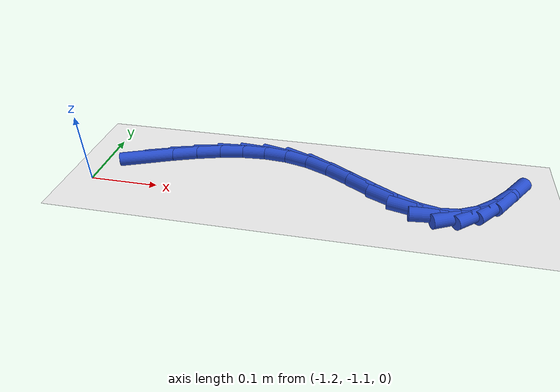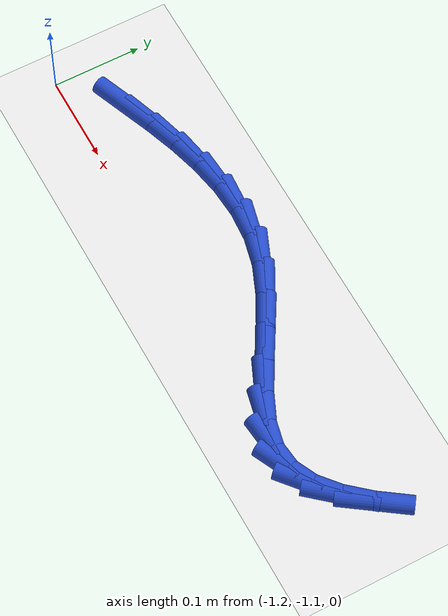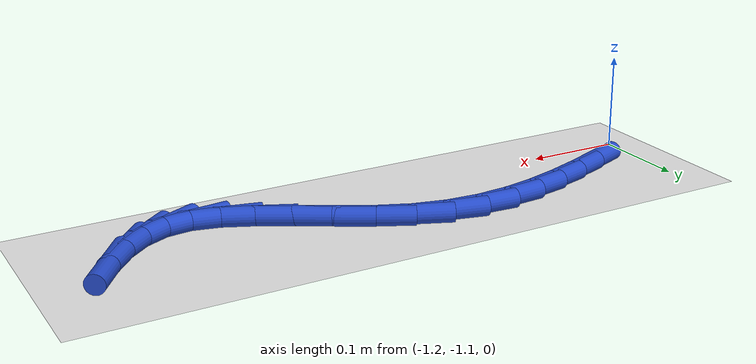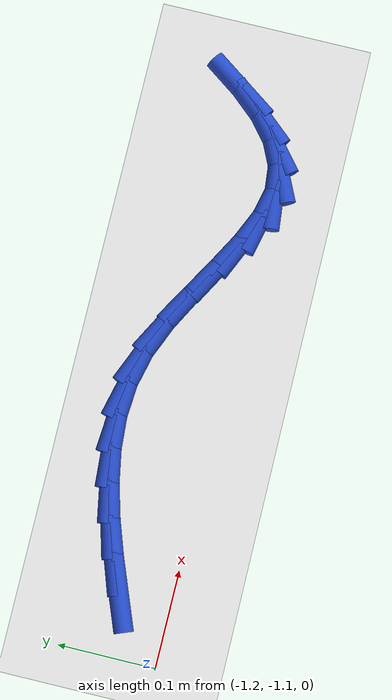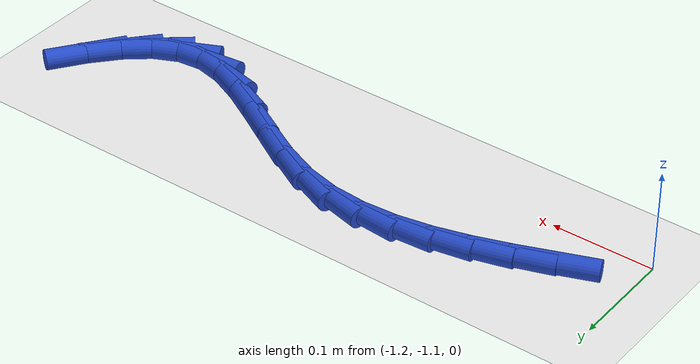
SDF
<sdf version="1.6">
 <world name="default">
  <model name="ground_plane">
   <static>1</static>
   <link name="link">
    <collision name="collision">
     <geometry><plane><normal>0 0 1</normal><size>100 100</size></plane></geometry>
     <surface><friction><ode><mu>100</mu><mu2>50</mu2></ode></friction></surface>
    </collision>
    <visual name="visual">
     <cast_shadows>0</cast_shadows>
     <geometry><plane><normal>0 0 1</normal><size>100 100</size></plane></geometry>
     <material>
      <script><uri>file://media/materials/scripts/gazebo.material</uri><name>Gazebo/WhiteGlow</name></script>
     </material>
    </visual>
   </link>
  </model>
  <model name="line">
   <link name="link_168">
    <pose>-1.1356898762267815 -1.04644188338284 0.01 0 1.57 0.3705356971624249</pose>
    <collision name="collision">
     <geometry><cylinder><radius>0.01</radius><length>0.08</length></cylinder></geometry>
    </collision>
    <visual name="visual">
     <material>
      <script><name>Gazebo/Blue</name><uri>file://media/materials/scripts/gazebo.material</uri></script>
     </material>
     <geometry><cylinder><radius>0.01</radius><length>0.08</length></cylinder></geometry>
    </visual>
   </link>
   <link name="link_169">
    <pose>-1.1012963533625058 -1.0330807022008377 0.01 0 1.57 0.3312994955244698</pose>
    <collision name="collision">
     <geometry><cylinder><radius>0.01</radius><length>0.08</length></cylinder></geometry>
    </collision>
    <visual name="visual">
     <material>
      <script><name>Gazebo/Blue</name><uri>file://media/materials/scripts/gazebo.material</uri></script>
     </material>
     <geometry><cylinder><radius>0.01</radius><length>0.08</length></cylinder></geometry>
    </visual>
   </link>
   <link name="link_170">
    <pose>-1.0668427425958449 -1.021229436284461 0.01 0 1.57 0.26890675327789965</pose>
    <collision name="collision">
     <geometry><cylinder><radius>0.01</radius><length>0.08</length></cylinder></geometry>
    </collision>
    <visual name="visual">
     <material>
      <script><name>Gazebo/Blue</name><uri>file://media/materials/scripts/gazebo.material</uri></script>
     </material>
     <geometry><cylinder><radius>0.01</radius><length>0.08</length></cylinder></geometry>
    </visual>
   </link>
   <link name="link_171">
    <pose>-1.0323672963665875 -1.011728640844794 0.01 0 1.57 0.18110304643794553</pose>
    <collision name="collision">
     <geometry><cylinder><radius>0.01</radius><length>0.08</length></cylinder></geometry>
    </collision>
    <visual name="visual">
     <material>
      <script><name>Gazebo/Blue</name><uri>file://media/materials/scripts/gazebo.material</uri></script>
     </material>
     <geometry><cylinder><radius>0.01</radius><length>0.08</length></cylinder></geometry>
    </visual>
   </link>
   <link name="link_172">
    <pose>-0.9979082671145232 -1.0054188710929226 0.01 0 1.57 0.06612149667915734</pose>
    <collision name="collision">
     <geometry><cylinder><radius>0.01</radius><length>0.08</length></cylinder></geometry>
    </collision>
    <visual name="visual">
     <material>
      <script><name>Gazebo/Blue</name><uri>file://media/materials/scripts/gazebo.material</uri></script>
     </material>
     <geometry><cylinder><radius>0.01</radius><length>0.08</length></cylinder></geometry>
    </visual>
   </link>
   <link name="link_173">
    <pose>-0.96350390727944 -1.0031406822399305 0.01 0 1.57 -0.07545653859609573</pose>
    <collision name="collision">
     <geometry><cylinder><radius>0.01</radius><length>0.08</length></cylinder></geometry>
    </collision>
    <visual name="visual">
     <material>
      <script><name>Gazebo/Blue</name><uri>file://media/materials/scripts/gazebo.material</uri></script>
     </material>
     <geometry><cylinder><radius>0.01</radius><length>0.08</length></cylinder></geometry>
    </visual>
   </link>
   <link name="link_174">
    <pose>-0.9291924693011286 -1.005734629496903 0.01 0 1.57 -0.23840270786793744</pose>
    <collision name="collision">
     <geometry><cylinder><radius>0.01</radius><length>0.08</length></cylinder></geometry>
    </collision>
    <visual name="visual">
     <material>
      <script><name>Gazebo/Blue</name><uri>file://media/materials/scripts/gazebo.material</uri></script>
     </material>
     <geometry><cylinder><radius>0.01</radius><length>0.08</length></cylinder></geometry>
    </visual>
   </link>
   <link name="link_175">
    <pose>-0.8950122056193777 -1.014041268074925 0.01 0 1.57 -0.39800355818640015</pose>
    <collision name="collision">
     <geometry><cylinder><radius>0.01</radius><length>0.08</length></cylinder></geometry>
    </collision>
    <visual name="visual">
     <material>
      <script><name>Gazebo/Blue</name><uri>file://media/materials/scripts/gazebo.material</uri></script>
     </material>
     <geometry><cylinder><radius>0.01</radius><length>0.08</length></cylinder></geometry>
    </visual>
   </link>
   <link name="link_176">
    <pose>-0.8610473166984963 -1.028321530042383 0.01 0 1.57 -0.4968047206521713</pose>
    <collision name="collision">
     <geometry><cylinder><radius>0.01</radius><length>0.08</length></cylinder></geometry>
    </collision>
    <visual name="visual">
     <material>
      <script><name>Gazebo/Blue</name><uri>file://media/materials/scripts/gazebo.material</uri></script>
     </material>
     <geometry><cylinder><radius>0.01</radius><length>0.08</length></cylinder></geometry>
    </visual>
   </link>
   <link name="link_177">
    <pose>-0.8275694360829564 -1.046471924794349 0.01 0 1.57 -0.5338979187542224</pose>
    <collision name="collision">
     <geometry><cylinder><radius>0.01</radius><length>0.08</length></cylinder></geometry>
    </collision>
    <visual name="visual">
     <material>
      <script><name>Gazebo/Blue</name><uri>file://media/materials/scripts/gazebo.material</uri></script>
     </material>
     <geometry><cylinder><radius>0.01</radius><length>0.08</length></cylinder></geometry>
    </visual>
   </link>
   <link name="link_178">
    <pose>-0.7948979837926774 -1.0657861469723384 0.01 0 1.57 -0.5130476309902703</pose>
    <collision name="collision">
     <geometry><cylinder><radius>0.01</radius><length>0.08</length></cylinder></geometry>
    </collision>
    <visual name="visual">
     <material>
      <script><name>Gazebo/Blue</name><uri>file://media/materials/scripts/gazebo.material</uri></script>
     </material>
     <geometry><cylinder><radius>0.01</radius><length>0.08</length></cylinder></geometry>
    </visual>
   </link>
   <link name="link_179">
    <pose>-0.7633523798606813 -1.0835578910526042 0.01 0 1.57 -0.42224068522523434</pose>
    <collision name="collision">
     <geometry><cylinder><radius>0.01</radius><length>0.08</length></cylinder></geometry>
    </collision>
    <visual name="visual">
     <material>
      <script><name>Gazebo/Blue</name><uri>file://media/materials/scripts/gazebo.material</uri></script>
     </material>
     <geometry><cylinder><radius>0.01</radius><length>0.08</length></cylinder></geometry>
    </visual>
   </link>
   <link name="link_180">
    <pose>-0.7332520443199877 -1.0970808515113994 0.01 0 1.57 -0.22776616963683866</pose>
    <collision name="collision">
     <geometry><cylinder><radius>0.01</radius><length>0.08</length></cylinder></geometry>
    </collision>
    <visual name="visual">
     <material>
      <script><name>Gazebo/Blue</name><uri>file://media/materials/scripts/gazebo.material</uri></script>
     </material>
     <geometry><cylinder><radius>0.01</radius><length>0.08</length></cylinder></geometry>
    </visual>
   </link>
   <link name="link_181">
    <pose>-0.7049163972036173 -1.1036487228249776 0.01 0 1.57 0.10074869645743757</pose>
    <collision name="collision">
     <geometry><cylinder><radius>0.01</radius><length>0.08</length></cylinder></geometry>
    </collision>
    <visual name="visual">
     <material>
      <script><name>Gazebo/Blue</name><uri>file://media/materials/scripts/gazebo.material</uri></script>
     </material>
     <geometry><cylinder><radius>0.01</radius><length>0.08</length></cylinder></geometry>
    </visual>
   </link>
   <link name="link_182">
    <pose>-0.6785924959271675 -1.1009876143040034 0.01 0 1.57 0.43977127252537446</pose>
    <collision name="collision">
     <geometry><cylinder><radius>0.01</radius><length>0.08</length></cylinder></geometry>
    </collision>
    <visual name="visual">
     <material>
      <script><name>Gazebo/Blue</name><uri>file://media/materials/scripts/gazebo.material</uri></script>
     </material>
     <geometry><cylinder><radius>0.01</radius><length>0.08</length></cylinder></geometry>
    </visual>
   </link>
   <link name="link_183">
    <pose>-0.6540866207721047 -1.0894575722041797 0.01 0 1.57 0.6906519183672083</pose>
    <collision name="collision">
     <geometry><cylinder><radius>0.01</radius><length>0.08</length></cylinder></geometry>
    </collision>
    <visual name="visual">
     <material>
      <script><name>Gazebo/Blue</name><uri>file://media/materials/scripts/gazebo.material</uri></script>
     </material>
     <geometry><cylinder><radius>0.01</radius><length>0.08</length></cylinder></geometry>
    </visual>
   </link>
   <link name="link_184">
    <pose>-0.6310390954356337 -1.0704103439033943 0.01 0 1.57 0.8544508132886357</pose>
    <collision name="collision">
     <geometry><cylinder><radius>0.01</radius><length>0.08</length></cylinder></geometry>
    </collision>
    <visual name="visual">
     <material>
      <script><name>Gazebo/Blue</name><uri>file://media/materials/scripts/gazebo.material</uri></script>
     </material>
     <geometry><cylinder><radius>0.01</radius><length>0.08</length></cylinder></geometry>
    </visual>
   </link>
   <link name="link_185">
    <pose>-0.6090899418150545 -1.0451994802349793 0.01 0 1.57 0.955699922041968</pose>
    <collision name="collision">
     <geometry><cylinder><radius>0.01</radius><length>0.08</length></cylinder></geometry>
    </collision>
    <visual name="visual">
     <material>
      <script><name>Gazebo/Blue</name><uri>file://media/materials/scripts/gazebo.material</uri></script>
     </material>
     <geometry><cylinder><radius>0.01</radius><length>0.08</length></cylinder></geometry>
    </visual>
   </link>
  </model>
 </world>
</sdf>
